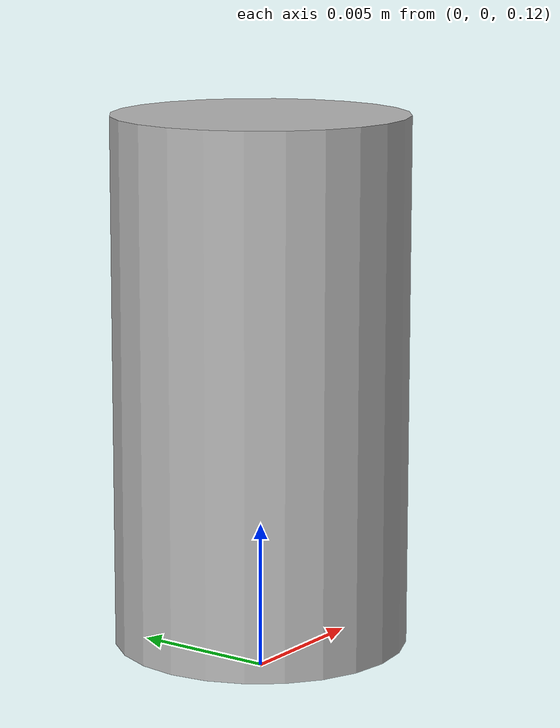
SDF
<?xml version='1.0'?>
<sdf version="1.6" >
  <model name="camera1">
 <link name="cam_link">
      <pose>0 0 -0.02 0 0 0 </pose>
      <inertial>
        <mass>0.01</mass>
        <inertia>
          <ixx>0.001</ixx>
          <iyy>0.001</iyy>
          <izz>0.001</izz>
        </inertia>
      </inertial>
      <visual name='cam_link'>
    	<pose>0 0 0.15 0 3.1415 0</pose>
    	<geometry>
    		<cylinder>
    			<radius>.005</radius>
    			<length>.018</length>
    		</cylinder>
    	</geometry>
    </visual>
    <sensor name="cam" type="camera" >
      <pose>0 0 0.15 0 1.5707 0</pose>
      <camera>
        <horizontal_fov>1.2</horizontal_fov>

        <image>
          <width>640</width>
          <height>480</height>
        </image>
        <clip>
          <near>0.1</near>
          <far>1000</far>
        </clip>
      </camera>
      <always_on>1</always_on>
      <update_rate>30</update_rate>
      <visualize>true</visualize>
      <plugin name="camera_controller" filename="libgazebo_ros_camera.so">
        <always_on>true</always_on>
        <update_rate>30</update_rate>
        <cameraName>webcam</cameraName>
        <imageTopicName>image_raw</imageTopicName>
        <cameraInfoTopicName>camera_info</cameraInfoTopicName>
        <frameName>camera_link</frameName>
      </plugin>
    </sensor>
    </link>
    </model>
</sdf>
